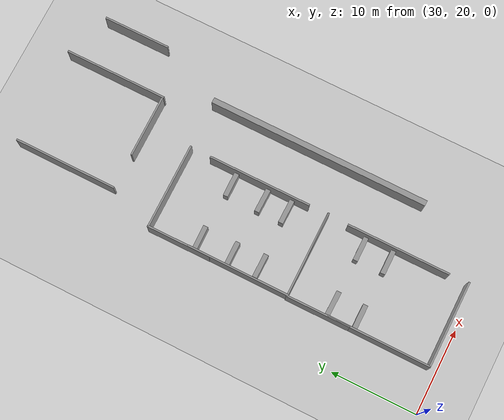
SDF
<sdf version="1.7">
 <world name="default">
  <model name="ground_plane">
   <static>1</static>
   <link name="link">
    <collision name="collision">
     <geometry><plane><normal>0 0 1</normal><size>100 100</size></plane></geometry>
     <surface><friction><ode><mu>100</mu><mu2>50</mu2></ode></friction></surface>
    </collision>
    <visual name="visual">
     <cast_shadows>0</cast_shadows>
     <geometry><plane><normal>0 0 1</normal><size>100 100</size></plane></geometry>
     <material>
      <script><uri>file://media/materials/scripts/gazebo.material</uri><name>Gazebo/Grey</name></script>
     </material>
    </visual>
   </link>
  </model>
  <model name="jiaoshi_clone_clone_clone_0">
   <model name="grey_wall">
    <static>1</static>
    <link name="link">
     <pose>0 0 1.4 0 -0 0</pose>
     <collision name="collision"><geometry><box><size>7.5 0.2 2.8</size></box></geometry></collision>
     <visual name="visual">
      <cast_shadows>0</cast_shadows>
      <geometry><box><size>7.5 0.2 2.8</size></box></geometry>
      <material>
       <script>
        <uri>model://grey_wall/materials/scripts</uri>
        <uri>model://grey_wall/materials/textures</uri>
        <name>vrc/grey_wall</name>
       </script>
      </material>
     </visual>
    </link>
    <pose>-3.38172 4.2623 0 0 0 -1.56473</pose>
   </model>
   <model name="grey_wall_10m">
    <link name="link">
     <pose>1.25079 -0.023082 1.4 0 -0 0</pose>
     <inertial>
      <inertia><ixx>0</ixx><ixy>0</ixy><ixz>0</ixz><iyy>0</iyy><iyz>0</iyz><izz>0</izz></inertia>
      <mass>0</mass>
     </inertial>
     <visual name="visual">
      <cast_shadows>0</cast_shadows>
      <geometry><box><size>10.0157 0.2 2.8</size></box></geometry>
      <material>
       <script>
        <uri>model://grey_wall/materials/scripts</uri>
        <uri>model://grey_wall/materials/textures</uri>
        <name>vrc/grey_wall</name>
       </script>
       <shader type="pixel"/>
       <ambient>1 1 1 1</ambient>
       <diffuse>1 1 1 1</diffuse>
       <specular>0 0 0 1</specular>
       <emissive>0 0 0 1</emissive>
      </material>
     </visual>
     <collision name="collision">
      <geometry><box><size>10.0157 0.2 2.8</size></box></geometry>
      <surface>
       <friction>
        <ode><mu>1</mu><mu2>1</mu2><fdir1>0 0 0</fdir1><slip1>0</slip1><slip2>0</slip2></ode>
        <torsional>
         <coefficient>1</coefficient>
         <patch_radius>0</patch_radius>
         <surface_radius>0</surface_radius>
         <use_patch_radius>1</use_patch_radius>
         <ode><slip>0</slip></ode>
        </torsional>
       </friction>
       <bounce><restitution_coefficient>0</restitution_coefficient><threshold>1e+06</threshold></bounce>
       <contact>
        <collide_without_contact>0</collide_without_contact>
        <collide_without_contact_bitmask>1</collide_without_contact_bitmask>
        <collide_bitmask>1</collide_bitmask>
        <ode>
         <soft_cfm>0</soft_cfm>
         <soft_erp>0.2</soft_erp>
         <kp>1e+13</kp>
         <kd>1</kd>
         <max_vel>0.01</max_vel>
         <min_depth>0</min_depth>
        </ode>
        <bullet>
         <split_impulse>1</split_impulse>
         <split_impulse_penetration_threshold>-0.01</split_impulse_penetration_threshold>
         <soft_cfm>0</soft_cfm>
         <soft_erp>0.2</soft_erp>
         <kp>1e+13</kp>
         <kd>1</kd>
        </bullet>
       </contact>
      </surface>
     </collision>
    </link>
    <static>1</static>
    <pose>0.433183 -8.77625 0 0 -0 0</pose>
   </model>
   <model name="grey_wall_10m_0">
    <link name="link">
     <pose>1.25079 -0.023082 1.4 0 -0 0</pose>
     <inertial>
      <inertia><ixx>0</ixx><ixy>0</ixy><ixz>0</ixz><iyy>0</iyy><iyz>0</iyz><izz>0</izz></inertia>
      <mass>0</mass>
     </inertial>
     <visual name="visual">
      <cast_shadows>0</cast_shadows>
      <geometry><box><size>10.0157 0.2 2.8</size></box></geometry>
      <material>
       <script>
        <uri>model://grey_wall/materials/scripts</uri>
        <uri>model://grey_wall/materials/textures</uri>
        <name>vrc/grey_wall</name>
       </script>
       <shader type="pixel"/>
       <ambient>1 1 1 1</ambient>
       <diffuse>1 1 1 1</diffuse>
       <specular>0 0 0 1</specular>
       <emissive>0 0 0 1</emissive>
      </material>
     </visual>
     <collision name="collision">
      <geometry><box><size>10.0157 0.2 2.8</size></box></geometry>
      <surface>
       <friction>
        <ode><mu>1</mu><mu2>1</mu2><fdir1>0 0 0</fdir1><slip1>0</slip1><slip2>0</slip2></ode>
        <torsional>
         <coefficient>1</coefficient>
         <patch_radius>0</patch_radius>
         <surface_radius>0</surface_radius>
         <use_patch_radius>1</use_patch_radius>
         <ode><slip>0</slip></ode>
        </torsional>
       </friction>
       <bounce><restitution_coefficient>0</restitution_coefficient><threshold>1e+06</threshold></bounce>
       <contact>
        <collide_without_contact>0</collide_without_contact>
        <collide_without_contact_bitmask>1</collide_without_contact_bitmask>
        <collide_bitmask>1</collide_bitmask>
        <ode>
         <soft_cfm>0</soft_cfm>
         <soft_erp>0.2</soft_erp>
         <kp>1e+13</kp>
         <kd>1</kd>
         <max_vel>0.01</max_vel>
         <min_depth>0</min_depth>
        </ode>
        <bullet>
         <split_impulse>1</split_impulse>
         <split_impulse_penetration_threshold>-0.01</split_impulse_penetration_threshold>
         <soft_cfm>0</soft_cfm>
         <soft_erp>0.2</soft_erp>
         <kp>1e+13</kp>
         <kd>1</kd>
        </bullet>
       </contact>
      </surface>
     </collision>
    </link>
    <static>1</static>
    <pose>0.377364 7.92573 0 0 -0 0</pose>
   </model>
   <model name="grey_wall_12m_vertial">
    <link name="link">
     <pose>0.289112 -0.003891 1.4 0 0 -1.5701</pose>
     <inertial>
      <inertia><ixx>0</ixx><ixy>0</ixy><ixz>0</ixz><iyy>0</iyy><iyz>0</iyz><izz>0</izz></inertia>
      <mass>0</mass>
     </inertial>
     <visual name="visual">
      <cast_shadows>0</cast_shadows>
      <geometry><box><size>12.0527 0.2 2.8</size></box></geometry>
      <material>
       <script>
        <uri>model://grey_wall/materials/scripts</uri>
        <uri>model://grey_wall/materials/textures</uri>
        <name>vrc/grey_wall</name>
       </script>
       <shader type="pixel"/>
       <ambient>1 1 1 1</ambient>
       <diffuse>1 1 1 1</diffuse>
       <specular>0 0 0 1</specular>
       <emissive>0 0 0 1</emissive>
      </material>
     </visual>
     <collision name="collision">
      <geometry><box><size>12.0527 0.2 2.8</size></box></geometry>
      <surface>
       <friction>
        <ode><mu>1</mu><mu2>1</mu2><fdir1>0 0 0</fdir1><slip1>0</slip1><slip2>0</slip2></ode>
        <torsional>
         <coefficient>1</coefficient>
         <patch_radius>0</patch_radius>
         <surface_radius>0</surface_radius>
         <use_patch_radius>1</use_patch_radius>
         <ode><slip>0</slip></ode>
        </torsional>
       </friction>
       <bounce><restitution_coefficient>0</restitution_coefficient><threshold>1e+06</threshold></bounce>
       <contact>
        <collide_without_contact>0</collide_without_contact>
        <collide_without_contact_bitmask>1</collide_without_contact_bitmask>
        <collide_bitmask>1</collide_bitmask>
        <ode>
         <soft_cfm>0</soft_cfm>
         <soft_erp>0.2</soft_erp>
         <kp>1e+13</kp>
         <kd>1</kd>
         <max_vel>0.01</max_vel>
         <min_depth>0</min_depth>
        </ode>
        <bullet>
         <split_impulse>1</split_impulse>
         <split_impulse_penetration_threshold>-0.01</split_impulse_penetration_threshold>
         <soft_cfm>0</soft_cfm>
         <soft_erp>0.2</soft_erp>
         <kp>1e+13</kp>
         <kd>1</kd>
        </bullet>
       </contact>
      </surface>
     </collision>
    </link>
    <static>1</static>
    <pose>-3.63668 -2.87268 0 0 -0 0</pose>
   </model>
   <model name="grey_wall_12m_vertial_0">
    <link name="link">
     <pose>0.289112 -0.003891 1.4 0 0 -1.5701</pose>
     <inertial>
      <inertia><ixx>0</ixx><ixy>0</ixy><ixz>0</ixz><iyy>0</iyy><iyz>0</iyz><izz>0</izz></inertia>
      <mass>0</mass>
     </inertial>
     <visual name="visual">
      <cast_shadows>0</cast_shadows>
      <geometry><box><size>12.0527 0.2 2.8</size></box></geometry>
      <material>
       <script>
        <uri>model://grey_wall/materials/scripts</uri>
        <uri>model://grey_wall/materials/textures</uri>
        <name>vrc/grey_wall</name>
       </script>
       <shader type="pixel"/>
       <ambient>1 1 1 1</ambient>
       <diffuse>1 1 1 1</diffuse>
       <specular>0 0 0 1</specular>
       <emissive>0 0 0 1</emissive>
      </material>
     </visual>
     <collision name="collision">
      <geometry><box><size>12.0527 0.2 2.8</size></box></geometry>
      <surface>
       <friction>
        <ode><mu>1</mu><mu2>1</mu2><fdir1>0 0 0</fdir1><slip1>0</slip1><slip2>0</slip2></ode>
        <torsional>
         <coefficient>1</coefficient>
         <patch_radius>0</patch_radius>
         <surface_radius>0</surface_radius>
         <use_patch_radius>1</use_patch_radius>
         <ode><slip>0</slip></ode>
        </torsional>
       </friction>
       <bounce><restitution_coefficient>0</restitution_coefficient><threshold>1e+06</threshold></bounce>
       <contact>
        <collide_without_contact>0</collide_without_contact>
        <collide_without_contact_bitmask>1</collide_without_contact_bitmask>
        <collide_bitmask>1</collide_bitmask>
        <ode>
         <soft_cfm>0</soft_cfm>
         <soft_erp>0.2</soft_erp>
         <kp>1e+13</kp>
         <kd>1</kd>
         <max_vel>0.01</max_vel>
         <min_depth>0</min_depth>
        </ode>
        <bullet>
         <split_impulse>1</split_impulse>
         <split_impulse_penetration_threshold>-0.01</split_impulse_penetration_threshold>
         <soft_cfm>0</soft_cfm>
         <soft_erp>0.2</soft_erp>
         <kp>1e+13</kp>
         <kd>1</kd>
        </bullet>
       </contact>
      </surface>
     </collision>
    </link>
    <static>1</static>
    <pose>6.20786 -0.539083 0 0 -0 0</pose>
   </model>
   <static>0</static>
   <pose>38.2716 46.5887 0 0 -0 0</pose>
  </model>
  <model name="jiaoshi_clone_clone_clone_1">
   <model name="grey_wall">
    <static>1</static>
    <link name="link">
     <pose>0 0 1.4 0 -0 0</pose>
     <collision name="collision"><geometry><box><size>7.5 0.2 2.8</size></box></geometry></collision>
     <visual name="visual">
      <cast_shadows>0</cast_shadows>
      <geometry><box><size>7.5 0.2 2.8</size></box></geometry>
      <material>
       <script>
        <uri>model://grey_wall/materials/scripts</uri>
        <uri>model://grey_wall/materials/textures</uri>
        <name>vrc/grey_wall</name>
       </script>
      </material>
     </visual>
    </link>
    <pose>-3.38172 4.2623 0 0 0 -1.56473</pose>
   </model>
   <model name="grey_wall_10m">
    <link name="link">
     <pose>1.25079 -0.023082 1.4 0 -0 0</pose>
     <inertial>
      <inertia><ixx>0</ixx><ixy>0</ixy><ixz>0</ixz><iyy>0</iyy><iyz>0</iyz><izz>0</izz></inertia>
      <mass>0</mass>
     </inertial>
     <visual name="visual">
      <cast_shadows>0</cast_shadows>
      <geometry><box><size>10.0157 0.2 2.8</size></box></geometry>
      <material>
       <script>
        <uri>model://grey_wall/materials/scripts</uri>
        <uri>model://grey_wall/materials/textures</uri>
        <name>vrc/grey_wall</name>
       </script>
       <shader type="pixel"/>
       <ambient>1 1 1 1</ambient>
       <diffuse>1 1 1 1</diffuse>
       <specular>0 0 0 1</specular>
       <emissive>0 0 0 1</emissive>
      </material>
     </visual>
     <collision name="collision">
      <geometry><box><size>10.0157 0.2 2.8</size></box></geometry>
      <surface>
       <friction>
        <ode><mu>1</mu><mu2>1</mu2><fdir1>0 0 0</fdir1><slip1>0</slip1><slip2>0</slip2></ode>
        <torsional>
         <coefficient>1</coefficient>
         <patch_radius>0</patch_radius>
         <surface_radius>0</surface_radius>
         <use_patch_radius>1</use_patch_radius>
         <ode><slip>0</slip></ode>
        </torsional>
       </friction>
       <bounce><restitution_coefficient>0</restitution_coefficient><threshold>1e+06</threshold></bounce>
       <contact>
        <collide_without_contact>0</collide_without_contact>
        <collide_without_contact_bitmask>1</collide_without_contact_bitmask>
        <collide_bitmask>1</collide_bitmask>
        <ode>
         <soft_cfm>0</soft_cfm>
         <soft_erp>0.2</soft_erp>
         <kp>1e+13</kp>
         <kd>1</kd>
         <max_vel>0.01</max_vel>
         <min_depth>0</min_depth>
        </ode>
        <bullet>
         <split_impulse>1</split_impulse>
         <split_impulse_penetration_threshold>-0.01</split_impulse_penetration_threshold>
         <soft_cfm>0</soft_cfm>
         <soft_erp>0.2</soft_erp>
         <kp>1e+13</kp>
         <kd>1</kd>
        </bullet>
       </contact>
      </surface>
     </collision>
    </link>
    <static>1</static>
    <pose>0.433183 -8.77625 0 0 -0 0</pose>
   </model>
   <model name="grey_wall_10m_0">
    <link name="link">
     <pose>1.25079 -0.023082 1.4 0 -0 0</pose>
     <inertial>
      <inertia><ixx>0</ixx><ixy>0</ixy><ixz>0</ixz><iyy>0</iyy><iyz>0</iyz><izz>0</izz></inertia>
      <mass>0</mass>
     </inertial>
     <visual name="visual">
      <cast_shadows>0</cast_shadows>
      <geometry><box><size>10.0157 0.2 2.8</size></box></geometry>
      <material>
       <script>
        <uri>model://grey_wall/materials/scripts</uri>
        <uri>model://grey_wall/materials/textures</uri>
        <name>vrc/grey_wall</name>
       </script>
       <shader type="pixel"/>
       <ambient>1 1 1 1</ambient>
       <diffuse>1 1 1 1</diffuse>
       <specular>0 0 0 1</specular>
       <emissive>0 0 0 1</emissive>
      </material>
     </visual>
     <collision name="collision">
      <geometry><box><size>10.0157 0.2 2.8</size></box></geometry>
      <surface>
       <friction>
        <ode><mu>1</mu><mu2>1</mu2><fdir1>0 0 0</fdir1><slip1>0</slip1><slip2>0</slip2></ode>
        <torsional>
         <coefficient>1</coefficient>
         <patch_radius>0</patch_radius>
         <surface_radius>0</surface_radius>
         <use_patch_radius>1</use_patch_radius>
         <ode><slip>0</slip></ode>
        </torsional>
       </friction>
       <bounce><restitution_coefficient>0</restitution_coefficient><threshold>1e+06</threshold></bounce>
       <contact>
        <collide_without_contact>0</collide_without_contact>
        <collide_without_contact_bitmask>1</collide_without_contact_bitmask>
        <collide_bitmask>1</collide_bitmask>
        <ode>
         <soft_cfm>0</soft_cfm>
         <soft_erp>0.2</soft_erp>
         <kp>1e+13</kp>
         <kd>1</kd>
         <max_vel>0.01</max_vel>
         <min_depth>0</min_depth>
        </ode>
        <bullet>
         <split_impulse>1</split_impulse>
         <split_impulse_penetration_threshold>-0.01</split_impulse_penetration_threshold>
         <soft_cfm>0</soft_cfm>
         <soft_erp>0.2</soft_erp>
         <kp>1e+13</kp>
         <kd>1</kd>
        </bullet>
       </contact>
      </surface>
     </collision>
    </link>
    <static>1</static>
    <pose>0.377364 7.92573 0 0 -0 0</pose>
   </model>
   <model name="grey_wall_12m_vertial">
    <link name="link">
     <pose>0.289112 -0.003891 1.4 0 0 -1.5701</pose>
     <inertial>
      <inertia><ixx>0</ixx><ixy>0</ixy><ixz>0</ixz><iyy>0</iyy><iyz>0</iyz><izz>0</izz></inertia>
      <mass>0</mass>
     </inertial>
     <visual name="visual">
      <cast_shadows>0</cast_shadows>
      <geometry><box><size>12.0527 0.2 2.8</size></box></geometry>
      <material>
       <script>
        <uri>model://grey_wall/materials/scripts</uri>
        <uri>model://grey_wall/materials/textures</uri>
        <name>vrc/grey_wall</name>
       </script>
       <shader type="pixel"/>
       <ambient>1 1 1 1</ambient>
       <diffuse>1 1 1 1</diffuse>
       <specular>0 0 0 1</specular>
       <emissive>0 0 0 1</emissive>
      </material>
     </visual>
     <collision name="collision">
      <geometry><box><size>12.0527 0.2 2.8</size></box></geometry>
      <surface>
       <friction>
        <ode><mu>1</mu><mu2>1</mu2><fdir1>0 0 0</fdir1><slip1>0</slip1><slip2>0</slip2></ode>
        <torsional>
         <coefficient>1</coefficient>
         <patch_radius>0</patch_radius>
         <surface_radius>0</surface_radius>
         <use_patch_radius>1</use_patch_radius>
         <ode><slip>0</slip></ode>
        </torsional>
       </friction>
       <bounce><restitution_coefficient>0</restitution_coefficient><threshold>1e+06</threshold></bounce>
       <contact>
        <collide_without_contact>0</collide_without_contact>
        <collide_without_contact_bitmask>1</collide_without_contact_bitmask>
        <collide_bitmask>1</collide_bitmask>
        <ode>
         <soft_cfm>0</soft_cfm>
         <soft_erp>0.2</soft_erp>
         <kp>1e+13</kp>
         <kd>1</kd>
         <max_vel>0.01</max_vel>
         <min_depth>0</min_depth>
        </ode>
        <bullet>
         <split_impulse>1</split_impulse>
         <split_impulse_penetration_threshold>-0.01</split_impulse_penetration_threshold>
         <soft_cfm>0</soft_cfm>
         <soft_erp>0.2</soft_erp>
         <kp>1e+13</kp>
         <kd>1</kd>
        </bullet>
       </contact>
      </surface>
     </collision>
    </link>
    <static>1</static>
    <pose>-3.63668 -2.87268 0 0 -0 0</pose>
   </model>
   <model name="grey_wall_12m_vertial_0">
    <link name="link">
     <pose>0.289112 -0.003891 1.4 0 0 -1.5701</pose>
     <inertial>
      <inertia><ixx>0</ixx><ixy>0</ixy><ixz>0</ixz><iyy>0</iyy><iyz>0</iyz><izz>0</izz></inertia>
      <mass>0</mass>
     </inertial>
     <visual name="visual">
      <cast_shadows>0</cast_shadows>
      <geometry><box><size>12.0527 0.2 2.8</size></box></geometry>
      <material>
       <script>
        <uri>model://grey_wall/materials/scripts</uri>
        <uri>model://grey_wall/materials/textures</uri>
        <name>vrc/grey_wall</name>
       </script>
       <shader type="pixel"/>
       <ambient>1 1 1 1</ambient>
       <diffuse>1 1 1 1</diffuse>
       <specular>0 0 0 1</specular>
       <emissive>0 0 0 1</emissive>
      </material>
     </visual>
     <collision name="collision">
      <geometry><box><size>12.0527 0.2 2.8</size></box></geometry>
      <surface>
       <friction>
        <ode><mu>1</mu><mu2>1</mu2><fdir1>0 0 0</fdir1><slip1>0</slip1><slip2>0</slip2></ode>
        <torsional>
         <coefficient>1</coefficient>
         <patch_radius>0</patch_radius>
         <surface_radius>0</surface_radius>
         <use_patch_radius>1</use_patch_radius>
         <ode><slip>0</slip></ode>
        </torsional>
       </friction>
       <bounce><restitution_coefficient>0</restitution_coefficient><threshold>1e+06</threshold></bounce>
       <contact>
        <collide_without_contact>0</collide_without_contact>
        <collide_without_contact_bitmask>1</collide_without_contact_bitmask>
        <collide_bitmask>1</collide_bitmask>
        <ode>
         <soft_cfm>0</soft_cfm>
         <soft_erp>0.2</soft_erp>
         <kp>1e+13</kp>
         <kd>1</kd>
         <max_vel>0.01</max_vel>
         <min_depth>0</min_depth>
        </ode>
        <bullet>
         <split_impulse>1</split_impulse>
         <split_impulse_penetration_threshold>-0.01</split_impulse_penetration_threshold>
         <soft_cfm>0</soft_cfm>
         <soft_erp>0.2</soft_erp>
         <kp>1e+13</kp>
         <kd>1</kd>
        </bullet>
       </contact>
      </surface>
     </collision>
    </link>
    <static>1</static>
    <pose>6.20786 -0.539083 0 0 -0 0</pose>
   </model>
   <static>0</static>
   <pose>38.2231 29.9014 0 0 -0 0</pose>
  </model>
  <model name="grew_wall_long_vertial_1_clone_clone_1">
   <model name="grey_wall_long">
    <link name="link">
     <pose>0 0 1.37589 0 -0 0</pose>
     <inertial>
      <inertia><ixx>0</ixx><ixy>0</ixy><ixz>0</ixz><iyy>0</iyy><iyz>0</iyz><izz>0</izz></inertia>
      <mass>0</mass>
     </inertial>
     <visual name="visual">
      <cast_shadows>0</cast_shadows>
      <geometry><box><size>25.8815 0.642976 2.8</size></box></geometry>
      <material>
       <script>
        <uri>model://grey_wall/materials/scripts</uri>
        <uri>model://grey_wall/materials/textures</uri>
        <name>vrc/grey_wall</name>
       </script>
       <shader type="pixel"><normal_map>__default__</normal_map></shader>
       <ambient>1 1 1 1</ambient>
       <diffuse>1 1 1 1</diffuse>
       <specular>0 0 0 1</specular>
       <emissive>0 0 0 1</emissive>
      </material>
     </visual>
     <collision name="collision">
      <geometry><box><size>25.8815 0.642976 2.8</size></box></geometry>
      <surface>
       <friction>
        <ode><mu>1</mu><mu2>1</mu2><fdir1>0 0 0</fdir1><slip1>0</slip1><slip2>0</slip2></ode>
        <torsional>
         <coefficient>1</coefficient>
         <patch_radius>0</patch_radius>
         <surface_radius>0</surface_radius>
         <use_patch_radius>1</use_patch_radius>
         <ode><slip>0</slip></ode>
        </torsional>
       </friction>
       <bounce><restitution_coefficient>0</restitution_coefficient><threshold>1e+06</threshold></bounce>
       <contact>
        <collide_without_contact>0</collide_without_contact>
        <collide_without_contact_bitmask>1</collide_without_contact_bitmask>
        <collide_bitmask>1</collide_bitmask>
        <ode>
         <soft_cfm>0</soft_cfm>
         <soft_erp>0.2</soft_erp>
         <kp>1e+13</kp>
         <kd>1</kd>
         <max_vel>0.01</max_vel>
         <min_depth>0</min_depth>
        </ode>
        <bullet>
         <split_impulse>1</split_impulse>
         <split_impulse_penetration_threshold>-0.01</split_impulse_penetration_threshold>
         <soft_cfm>0</soft_cfm>
         <soft_erp>0.2</soft_erp>
         <kp>1e+13</kp>
         <kd>1</kd>
        </bullet>
       </contact>
      </surface>
     </collision>
    </link>
    <static>1</static>
    <pose>1e-06 -0 0 0 -0 1.57003</pose>
   </model>
   <static>0</static>
   <pose>50.6453 41.7944 0 0 -0 0</pose>
  </model>
  <model name="grey_wall_12m_vertial_1">
   <link name="link">
    <pose>0.289112 -0.003891 1.4 0 0 -1.5701</pose>
    <inertial>
     <inertia><ixx>0</ixx><ixy>0</ixy><ixz>0</ixz><iyy>0</iyy><iyz>0</iyz><izz>0</izz></inertia>
     <mass>0</mass>
    </inertial>
    <visual name="visual">
     <cast_shadows>0</cast_shadows>
     <geometry><box><size>12.0527 0.2 2.8</size></box></geometry>
     <material>
      <script>
       <uri>model://grey_wall/materials/scripts</uri>
       <uri>model://grey_wall/materials/textures</uri>
       <name>vrc/grey_wall</name>
      </script>
      <shader type="pixel"/>
      <ambient>1 1 1 1</ambient>
      <diffuse>1 1 1 1</diffuse>
      <specular>0 0 0 1</specular>
      <emissive>0 0 0 1</emissive>
     </material>
    </visual>
    <collision name="collision">
     <geometry><box><size>12.0527 0.2 2.8</size></box></geometry>
     <surface>
      <friction>
       <ode><mu>1</mu><mu2>1</mu2><fdir1>0 0 0</fdir1><slip1>0</slip1><slip2>0</slip2></ode>
       <torsional>
        <coefficient>1</coefficient>
        <patch_radius>0</patch_radius>
        <surface_radius>0</surface_radius>
        <use_patch_radius>1</use_patch_radius>
        <ode><slip>0</slip></ode>
       </torsional>
      </friction>
      <bounce><restitution_coefficient>0</restitution_coefficient><threshold>1e+06</threshold></bounce>
      <contact>
       <collide_without_contact>0</collide_without_contact>
       <collide_without_contact_bitmask>1</collide_without_contact_bitmask>
       <collide_bitmask>1</collide_bitmask>
       <ode>
        <soft_cfm>0</soft_cfm>
        <soft_erp>0.2</soft_erp>
        <kp>1e+13</kp>
        <kd>1</kd>
        <max_vel>0.01</max_vel>
        <min_depth>0</min_depth>
       </ode>
       <bullet>
        <split_impulse>1</split_impulse>
        <split_impulse_penetration_threshold>-0.01</split_impulse_penetration_threshold>
        <soft_cfm>0</soft_cfm>
        <soft_erp>0.2</soft_erp>
        <kp>1e+13</kp>
        <kd>1</kd>
       </bullet>
      </contact>
     </surface>
    </collision>
   </link>
   <static>1</static>
   <pose>36.6721 65.8315 0 0 -0 0</pose>
  </model>
  <model name="grey_wall_12m_vertial_1_clone">
   <link name="link">
    <pose>0.289112 -0.003891 1.4 0 0 -1.5701</pose>
    <inertial>
     <inertia><ixx>0</ixx><ixy>0</ixy><ixz>0</ixz><iyy>0</iyy><iyz>0</iyz><izz>0</izz></inertia>
     <mass>0</mass>
    </inertial>
    <visual name="visual">
     <cast_shadows>0</cast_shadows>
     <geometry><box><size>12.0527 0.2 2.8</size></box></geometry>
     <material>
      <script>
       <uri>model://grey_wall/materials/scripts</uri>
       <uri>model://grey_wall/materials/textures</uri>
       <name>vrc/grey_wall</name>
      </script>
      <shader type="pixel"/>
      <ambient>1 1 1 1</ambient>
      <diffuse>1 1 1 1</diffuse>
      <specular>0 0 0 1</specular>
      <emissive>0 0 0 1</emissive>
     </material>
    </visual>
    <collision name="collision">
     <geometry><box><size>12.0527 0.2 2.8</size></box></geometry>
     <surface>
      <friction>
       <ode><mu>1</mu><mu2>1</mu2><fdir1>0 0 0</fdir1><slip1>0</slip1><slip2>0</slip2></ode>
       <torsional>
        <coefficient>1</coefficient>
        <patch_radius>0</patch_radius>
        <surface_radius>0</surface_radius>
        <use_patch_radius>1</use_patch_radius>
        <ode><slip>0</slip></ode>
       </torsional>
      </friction>
      <bounce><restitution_coefficient>0</restitution_coefficient><threshold>1e+06</threshold></bounce>
      <contact>
       <collide_without_contact>0</collide_without_contact>
       <collide_without_contact_bitmask>1</collide_without_contact_bitmask>
       <collide_bitmask>1</collide_bitmask>
       <ode>
        <soft_cfm>0</soft_cfm>
        <soft_erp>0.2</soft_erp>
        <kp>1e+13</kp>
        <kd>1</kd>
        <max_vel>0.01</max_vel>
        <min_depth>0</min_depth>
       </ode>
       <bullet>
        <split_impulse>1</split_impulse>
        <split_impulse_penetration_threshold>-0.01</split_impulse_penetration_threshold>
        <soft_cfm>0</soft_cfm>
        <soft_erp>0.2</soft_erp>
        <kp>1e+13</kp>
        <kd>1</kd>
       </bullet>
      </contact>
     </surface>
    </collision>
   </link>
   <static>1</static>
   <pose>48.1781 65.7119 0 0 -0 0</pose>
  </model>
  <model name="unit_box_clone_16">
   <pose>36.4412 49.0673 0.834396 0 -3.2e-05 0.013379</pose>
   <link name="link">
    <inertial>
     <mass>1</mass>
     <inertia>
      <ixx>0.166667</ixx>
      <ixy>0</ixy>
      <ixz>0</ixz>
      <iyy>0.166667</iyy>
      <iyz>0</iyz>
      <izz>0.166667</izz>
     </inertia>
    </inertial>
    <collision name="collision"><geometry><box><size>2.81196 0.562598 1.66888</size></box></geometry></collision>
    <visual name="visual">
     <geometry><box><size>2.81196 0.562598 1.66888</size></box></geometry>
     <material>
      <script><name>Gazebo/Grey</name><uri>file://media/materials/scripts/gazebo.material</uri></script>
     </material>
    </visual>
   </link>
  </model>
  <model name="unit_box_clone_17">
   <pose>43.223 48.7438 0.834396 0 -3.2e-05 0.007022</pose>
   <link name="link">
    <inertial>
     <mass>1</mass>
     <inertia>
      <ixx>0.166667</ixx>
      <ixy>0</ixy>
      <ixz>0</ixz>
      <iyy>0.166667</iyy>
      <iyz>0</iyz>
      <izz>0.166667</izz>
     </inertia>
    </inertial>
    <collision name="collision"><geometry><box><size>2.81196 0.562598 1.66888</size></box></geometry></collision>
    <visual name="visual">
     <geometry><box><size>2.81196 0.562598 1.66888</size></box></geometry>
     <material>
      <script><name>Gazebo/Grey</name><uri>file://media/materials/scripts/gazebo.material</uri></script>
     </material>
    </visual>
   </link>
  </model>
  <model name="unit_box_clone_18">
   <pose>36.4507 45.1728 0.834396 -0 -3.2e-05 0.006672</pose>
   <link name="link">
    <inertial>
     <mass>1</mass>
     <inertia>
      <ixx>0.166667</ixx>
      <ixy>0</ixy>
      <ixz>0</ixz>
      <iyy>0.166667</iyy>
      <iyz>0</iyz>
      <izz>0.166667</izz>
     </inertia>
    </inertial>
    <collision name="collision"><geometry><box><size>2.81196 0.562598 1.66888</size></box></geometry></collision>
    <visual name="visual">
     <geometry><box><size>2.81196 0.562598 1.66888</size></box></geometry>
     <material>
      <script><name>Gazebo/Grey</name><uri>file://media/materials/scripts/gazebo.material</uri></script>
     </material>
    </visual>
   </link>
  </model>
  <model name="unit_box_clone_19">
   <pose>43.1778 44.866 0.834396 0 -3.2e-05 -0.013577</pose>
   <link name="link">
    <inertial>
     <mass>1</mass>
     <inertia>
      <ixx>0.166667</ixx>
      <ixy>0</ixy>
      <ixz>0</ixz>
      <iyy>0.166667</iyy>
      <iyz>0</iyz>
      <izz>0.166667</izz>
     </inertia>
    </inertial>
    <collision name="collision"><geometry><box><size>2.81196 0.562598 1.66888</size></box></geometry></collision>
    <visual name="visual">
     <geometry><box><size>2.81196 0.562598 1.66888</size></box></geometry>
     <material>
      <script><name>Gazebo/Grey</name><uri>file://media/materials/scripts/gazebo.material</uri></script>
     </material>
    </visual>
   </link>
  </model>
  <model name="unit_box_clone_20">
   <pose>36.6199 41.8509 0.834396 -0 3.2e-05 -0.00801</pose>
   <link name="link">
    <inertial>
     <mass>1</mass>
     <inertia>
      <ixx>0.166667</ixx>
      <ixy>0</ixy>
      <ixz>0</ixz>
      <iyy>0.166667</iyy>
      <iyz>0</iyz>
      <izz>0.166667</izz>
     </inertia>
    </inertial>
    <collision name="collision"><geometry><box><size>2.81196 0.562598 1.66888</size></box></geometry></collision>
    <visual name="visual">
     <geometry><box><size>2.81196 0.562598 1.66888</size></box></geometry>
     <material>
      <script><name>Gazebo/Grey</name><uri>file://media/materials/scripts/gazebo.material</uri></script>
     </material>
    </visual>
   </link>
  </model>
  <model name="unit_box_clone_21">
   <pose>43.2491 42.0021 0.834396 0 3.2e-05 -0.011741</pose>
   <link name="link">
    <inertial>
     <mass>1</mass>
     <inertia>
      <ixx>0.166667</ixx>
      <ixy>0</ixy>
      <ixz>0</ixz>
      <iyy>0.166667</iyy>
      <iyz>0</iyz>
      <izz>0.166667</izz>
     </inertia>
    </inertial>
    <collision name="collision"><geometry><box><size>2.81196 0.562598 1.66888</size></box></geometry></collision>
    <visual name="visual">
     <geometry><box><size>2.81196 0.562598 1.66888</size></box></geometry>
     <material>
      <script><name>Gazebo/Grey</name><uri>file://media/materials/scripts/gazebo.material</uri></script>
     </material>
    </visual>
   </link>
  </model>
  <model name="unit_box_clone_22">
   <pose>36.5158 33.0746 0.834396 -0 3.2e-05 -0.01358</pose>
   <link name="link">
    <inertial>
     <mass>1</mass>
     <inertia>
      <ixx>0.166667</ixx>
      <ixy>0</ixy>
      <ixz>0</ixz>
      <iyy>0.166667</iyy>
      <iyz>0</iyz>
      <izz>0.166667</izz>
     </inertia>
    </inertial>
    <collision name="collision"><geometry><box><size>2.81196 0.562598 1.66888</size></box></geometry></collision>
    <visual name="visual">
     <geometry><box><size>2.81196 0.562598 1.66888</size></box></geometry>
     <material>
      <script><name>Gazebo/Grey</name><uri>file://media/materials/scripts/gazebo.material</uri></script>
     </material>
    </visual>
   </link>
  </model>
  <model name="unit_box_clone_23">
   <pose>43.1687 32.9941 0.834396 -0 -3.2e-05 0.008387</pose>
   <link name="link">
    <inertial>
     <mass>1</mass>
     <inertia>
      <ixx>0.166667</ixx>
      <ixy>0</ixy>
      <ixz>0</ixz>
      <iyy>0.166667</iyy>
      <iyz>0</iyz>
      <izz>0.166667</izz>
     </inertia>
    </inertial>
    <collision name="collision"><geometry><box><size>2.81196 0.562598 1.66888</size></box></geometry></collision>
    <visual name="visual">
     <geometry><box><size>2.81196 0.562598 1.66888</size></box></geometry>
     <material>
      <script><name>Gazebo/Grey</name><uri>file://media/materials/scripts/gazebo.material</uri></script>
     </material>
    </visual>
   </link>
  </model>
  <model name="unit_box_clone_24">
   <pose>36.4999 29.8831 0.834396 0 -3.2e-05 0.002911</pose>
   <link name="link">
    <inertial>
     <mass>1</mass>
     <inertia>
      <ixx>0.166667</ixx>
      <ixy>0</ixy>
      <ixz>0</ixz>
      <iyy>0.166667</iyy>
      <iyz>0</iyz>
      <izz>0.166667</izz>
     </inertia>
    </inertial>
    <collision name="collision"><geometry><box><size>2.81196 0.562598 1.66888</size></box></geometry></collision>
    <visual name="visual">
     <geometry><box><size>2.81196 0.562598 1.66888</size></box></geometry>
     <material>
      <script><name>Gazebo/Grey</name><uri>file://media/materials/scripts/gazebo.material</uri></script>
     </material>
    </visual>
   </link>
  </model>
  <model name="unit_box_clone_25">
   <pose>43.1824 29.7351 0.834396 0 3.2e-05 0.005753</pose>
   <link name="link">
    <inertial>
     <mass>1</mass>
     <inertia>
      <ixx>0.166667</ixx>
      <ixy>0</ixy>
      <ixz>0</ixz>
      <iyy>0.166667</iyy>
      <iyz>0</iyz>
      <izz>0.166667</izz>
     </inertia>
    </inertial>
    <collision name="collision"><geometry><box><size>2.81196 0.562598 1.66888</size></box></geometry></collision>
    <visual name="visual">
     <geometry><box><size>2.81196 0.562598 1.66888</size></box></geometry>
     <material>
      <script><name>Gazebo/Grey</name><uri>file://media/materials/scripts/gazebo.material</uri></script>
     </material>
    </visual>
   </link>
  </model>
  <model name="grey_wall_0_clone_clone">
   <static>1</static>
   <link name="link">
    <pose>0 0 1.4 0 -0 0</pose>
    <collision name="collision"><geometry><box><size>7.5 0.2 2.8</size></box></geometry></collision>
    <visual name="visual">
     <cast_shadows>0</cast_shadows>
     <geometry><box><size>7.5 0.2 2.8</size></box></geometry>
     <material>
      <script>
       <uri>model://grey_wall/materials/scripts</uri>
       <uri>model://grey_wall/materials/textures</uri>
       <name>vrc/grey_wall</name>
      </script>
     </material>
    </visual>
   </link>
   <pose>44.8085 59.8409 0 0 -0 0</pose>
  </model>
  <model name="grey_wall_high_clone_4">
   <link name="link">
    <pose>0.546134 -0.568384 0.521109 0 -0 0</pose>
    <inertial>
     <inertia><ixx>0</ixx><ixy>0</ixy><ixz>0</ixz><iyy>0</iyy><iyz>0</iyz><izz>0</izz></inertia>
     <mass>0</mass>
    </inertial>
    <visual name="visual">
     <cast_shadows>0</cast_shadows>
     <geometry><box><size>7.82417 0.2 4.57376</size></box></geometry>
     <material>
      <script>
       <uri>model://grey_wall/materials/scripts</uri>
       <uri>model://grey_wall/materials/textures</uri>
       <name>vrc/grey_wall</name>
      </script>
      <shader type="pixel"/>
      <ambient>1 1 1 1</ambient>
      <diffuse>1 1 1 1</diffuse>
      <specular>0 0 0 1</specular>
      <emissive>0 0 0 1</emissive>
     </material>
    </visual>
    <collision name="collision">
     <geometry><box><size>7.82417 0.2 4.57376</size></box></geometry>
     <surface>
      <friction>
       <ode><mu>1</mu><mu2>1</mu2><fdir1>0 0 0</fdir1><slip1>0</slip1><slip2>0</slip2></ode>
       <torsional>
        <coefficient>1</coefficient>
        <patch_radius>0</patch_radius>
        <surface_radius>0</surface_radius>
        <use_patch_radius>1</use_patch_radius>
        <ode><slip>0</slip></ode>
       </torsional>
      </friction>
      <bounce><restitution_coefficient>0</restitution_coefficient><threshold>1e+06</threshold></bounce>
      <contact>
       <collide_without_contact>0</collide_without_contact>
       <collide_without_contact_bitmask>1</collide_without_contact_bitmask>
       <collide_bitmask>1</collide_bitmask>
       <ode>
        <soft_cfm>0</soft_cfm>
        <soft_erp>0.2</soft_erp>
        <kp>1e+13</kp>
        <kd>1</kd>
        <max_vel>0.01</max_vel>
        <min_depth>0</min_depth>
       </ode>
       <bullet>
        <split_impulse>1</split_impulse>
        <split_impulse_penetration_threshold>-0.01</split_impulse_penetration_threshold>
        <soft_cfm>0</soft_cfm>
        <soft_erp>0.2</soft_erp>
        <kp>1e+13</kp>
        <kd>1</kd>
       </bullet>
      </contact>
     </surface>
    </collision>
   </link>
   <static>1</static>
   <pose>54.424 66.4759 0 0 0 -1.56746</pose>
  </model>
 </world>
</sdf>
